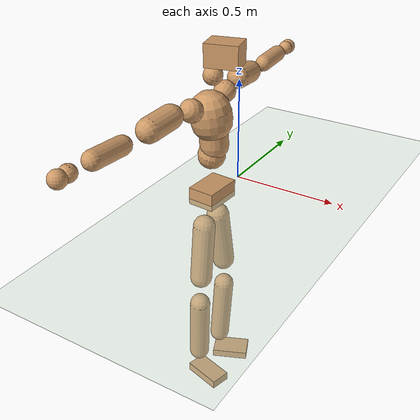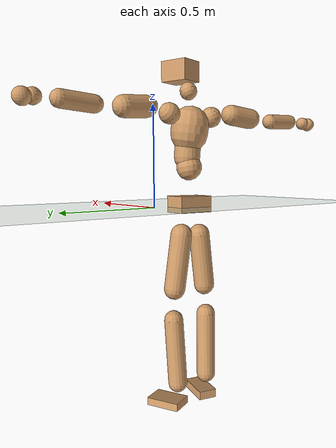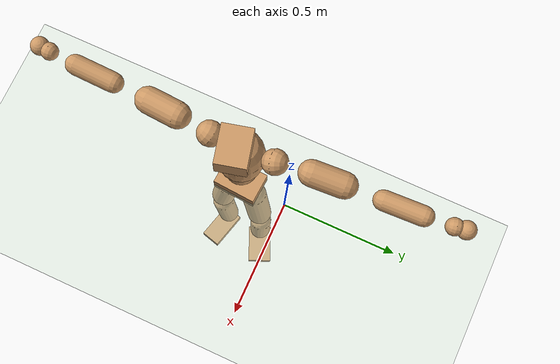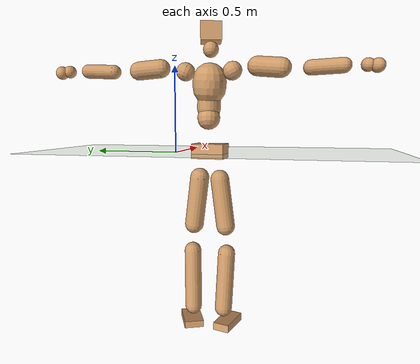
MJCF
<mujoco model="humanoid">
  <compiler coordinate="local" angle="radian"/>
  <default>
    <joint damping="0.0" armature="0.01" stiffness="0.0" limited="true"/>
    <geom conaffinity="1" condim="3" contype="7" margin="0.001" rgba="0.8 0.6 .4 1"/>
  </default>
  <asset>
    <texture type="skybox" builtin="gradient" rgb1=".4 .5 .6" rgb2="0 0 0" width="100" height="100"/>
    <texture builtin="flat" height="1278" mark="cross" markrgb="1 1 1" name="texgeom" random="0.01" rgb1="0.8 0.6 0.4" rgb2="0.8 0.6 0.4" type="cube" width="127"/>
    <texture builtin="checker" height="100" name="texplane" rgb1="0 0 0" rgb2="0.8 0.8 0.8" type="2d" width="100"/>
    <material name="MatPlane" reflectance="0.5" shininess="1" specular="1" texrepeat="60 60" texture="texplane"/>
    <material name="geom" texture="texgeom" texuniform="true"/>
  </asset>
  <worldbody>
    <light cutoff="100" diffuse="1 1 1" dir="-0 0 -1.3" directional="true" exponent="1" pos="0 0 1.3" specular=".1 .1 .1"/>
    <geom conaffinity="1" condim="3" name="floor" pos="0 0 0" rgba="0.8 0.9 0.8 1" size="100 100 .2" type="plane" material="MatPlane"/>
    <body name="Pelvis" pos="-0.0035 -0.2119 0.0206">
      <freejoint name="Pelvis"/>
      <geom type="box" contype="1" conaffinity="1" density="5359.375386" pos="-0.0120 0.0008 -0.0082" size="0.0645 0.0937 0.0421" quat="0.9994 0.0000 0.0000 -0.0332" name="Pelvis"/>
      <body name="L_Hip" pos="-0.022 0.0491 -0.0785">
        <joint name="L_Hip_x" type="hinge" pos="0 0 0" axis="1 0 0" stiffness="1600" damping="160" armature="0.02" range="-180.0000 180.0000"/>
        <joint name="L_Hip_y" type="hinge" pos="0 0 0" axis="0 1 0" stiffness="1600" damping="160" armature="0.02" range="-180.0000 180.0000"/>
        <joint name="L_Hip_z" type="hinge" pos="0 0 0" axis="0 0 1" stiffness="1600" damping="160" armature="0.02" range="-180.0000 180.0000"/>
        <geom type="capsule" contype="1" conaffinity="1" density="2040.816327" size="0.0551" fromto="0.0032 0.0110 -0.0843 0.0138 0.0480 -0.3681" name="L_Hip"/>
        <body name="L_Knee" pos="0.017 0.0589 -0.4524">
          <joint name="L_Knee_x" type="hinge" pos="0 0 0" axis="1 0 0" stiffness="1600" damping="160" armature="0.02" range="-180.0000 180.0000"/>
          <joint name="L_Knee_y" type="hinge" pos="0 0 0" axis="0 1 0" stiffness="1600" damping="160" armature="0.02" range="-180.0000 180.0000"/>
          <joint name="L_Knee_z" type="hinge" pos="0 0 0" axis="0 0 1" stiffness="1600" damping="160" armature="0.02" range="-180.0000 180.0000"/>
          <geom type="capsule" contype="1" conaffinity="1" density="1234.567901" size="0.0497" fromto="-0.0050 -0.0020 -0.0795 -0.0263 -0.0106 -0.4187" name="L_Knee"/>
          <body name="L_Ankle" pos="-0.0313 -0.0126 -0.4982">
            <joint name="L_Ankle_x" type="hinge" pos="0 0 0" axis="1 0 0" stiffness="1600" damping="160" armature="0.02" range="-180.0000 180.0000"/>
            <joint name="L_Ankle_y" type="hinge" pos="0 0 0" axis="0 1 0" stiffness="1600" damping="160" armature="0.02" range="-180.0000 180.0000"/>
            <joint name="L_Ankle_z" type="hinge" pos="0 0 0" axis="0 0 1" stiffness="1600" damping="160" armature="0.02" range="-180.0000 180.0000"/>
            <geom type="box" contype="1" conaffinity="1" density="999.99995" pos="0.0641 0.0276 -0.0341" size="0.091 0.0576 0.02" quat="0.9794 0.0000 0.0000 0.2020" name="L_Ankle"/>
            <body name="L_Toe" pos="0.1282 0.0552 -0.0682">
              <joint name="L_Toe_x" type="hinge" pos="0 0 0" axis="1 0 0" stiffness="1000" damping="100" armature="0.02" range="-180.0000 180.0000"/>
              <joint name="L_Toe_y" type="hinge" pos="0 0 0" axis="0 1 0" stiffness="1000" damping="100" armature="0.02" range="-180.0000 180.0000"/>
              <joint name="L_Toe_z" type="hinge" pos="0 0 0" axis="0 0 1" stiffness="1000" damping="100" armature="0.02" range="-180.0000 180.0000"/>
              <geom type="box" contype="1" conaffinity="1" density="7505850.998462" pos="0.0000 0.0000 0.0369" size="0.001 0.0027 0.0011" quat="0.9786 0.0000 0.0000 0.2056" name="L_Toe"/>
            </body>
          </body>
        </body>
      </body>
      <body name="R_Hip" pos="-0.0204 -0.0491 -0.0866">
        <joint name="R_Hip_x" type="hinge" pos="0 0 0" axis="1 0 0" stiffness="1600" damping="160" armature="0.02" range="-180.0000 180.0000"/>
        <joint name="R_Hip_y" type="hinge" pos="0 0 0" axis="0 1 0" stiffness="1600" damping="160" armature="0.02" range="-180.0000 180.0000"/>
        <joint name="R_Hip_z" type="hinge" pos="0 0 0" axis="0 0 1" stiffness="1600" damping="160" armature="0.02" range="-180.0000 180.0000"/>
        <geom type="capsule" contype="1" conaffinity="1" density="2040.816327" size="0.0538" fromto="0.0003 -0.0107 -0.0832 0.0013 -0.0464 -0.3609" name="R_Hip"/>
        <body name="R_Knee" pos="0.0016 -0.0571 -0.444">
          <joint name="R_Knee_x" type="hinge" pos="0 0 0" axis="1 0 0" stiffness="1600" damping="160" armature="0.02" range="-180.0000 180.0000"/>
          <joint name="R_Knee_y" type="hinge" pos="0 0 0" axis="0 1 0" stiffness="1600" damping="160" armature="0.02" range="-180.0000 180.0000"/>
          <joint name="R_Knee_z" type="hinge" pos="0 0 0" axis="0 0 1" stiffness="1600" damping="160" armature="0.02" range="-180.0000 180.0000"/>
          <geom type="capsule" contype="1" conaffinity="1" density="1234.567901" size="0.0502" fromto="-0.0046 0.0032 -0.0800 -0.0237 0.0166 -0.4104" name="R_Knee"/>
          <body name="R_Ankle" pos="-0.0284 0.0199 -0.4903">
            <joint name="R_Ankle_x" type="hinge" pos="0 0 0" axis="1 0 0" stiffness="1600" damping="160" armature="0.02" range="-180.0000 180.0000"/>
            <joint name="R_Ankle_y" type="hinge" pos="0 0 0" axis="0 1 0" stiffness="1600" damping="160" armature="0.02" range="-180.0000 180.0000"/>
            <joint name="R_Ankle_z" type="hinge" pos="0 0 0" axis="0 0 1" stiffness="1600" damping="160" armature="0.02" range="-180.0000 180.0000"/>
            <geom type="box" contype="1" conaffinity="1" density="1000.000054" pos="0.0687 -0.0183 -0.0361" size="0.0964 0.0489 0.0222" quat="0.9915 0.0000 0.0000 -0.1301" name="R_Ankle"/>
            <body name="R_Toe" pos="0.1374 -0.0367 -0.0721">
              <joint name="R_Toe_x" type="hinge" pos="0 0 0" axis="1 0 0" stiffness="1000" damping="100" armature="0.02" range="-180.0000 180.0000"/>
              <joint name="R_Toe_y" type="hinge" pos="0 0 0" axis="0 1 0" stiffness="1000" damping="100" armature="0.02" range="-180.0000 180.0000"/>
              <joint name="R_Toe_z" type="hinge" pos="0 0 0" axis="0 0 1" stiffness="1000" damping="100" armature="0.02" range="-180.0000 180.0000"/>
              <geom type="box" contype="1" conaffinity="1" density="9306815.166121" pos="0.0000 0.0000 0.0366" size="0.001 0.0024 0.0011" quat="0.9926 0.0000 0.0000 -0.1217" name="R_Toe"/>
            </body>
          </body>
        </body>
      </body>
      <body name="Torso" pos="-0.0296 0.0048 0.1158">
        <joint name="Torso_x" type="hinge" pos="0 0 0" axis="1 0 0" stiffness="2000" damping="200" armature="0.02" range="-180.0000 180.0000"/>
        <joint name="Torso_y" type="hinge" pos="0 0 0" axis="0 1 0" stiffness="2000" damping="200" armature="0.02" range="-180.0000 180.0000"/>
        <joint name="Torso_z" type="hinge" pos="0 0 0" axis="0 0 1" stiffness="2000" damping="200" armature="0.02" range="-180.0000 180.0000"/>
        <geom type="capsule" contype="1" conaffinity="1" density="2040.816327" size="0.0653" fromto="0.0122 0.0017 0.0639 0.0126 0.0018 0.0658" name="Torso"/>
        <body name="Spine" pos="0.0248 0.0035 0.1297">
          <joint name="Spine_x" type="hinge" pos="0 0 0" axis="1 0 0" stiffness="2000" damping="200" armature="0.02" range="-180.0000 180.0000"/>
          <joint name="Spine_y" type="hinge" pos="0 0 0" axis="0 1 0" stiffness="2000" damping="200" armature="0.02" range="-180.0000 180.0000"/>
          <joint name="Spine_z" type="hinge" pos="0 0 0" axis="0 0 1" stiffness="2000" damping="200" armature="0.02" range="-180.0000 180.0000"/>
          <geom type="capsule" contype="1" conaffinity="1" density="2040.816327" size="0.0667" fromto="-0.0039 -0.0020 0.0666 0.0008 0.0004 -0.0141" name="Spine"/>
          <body name="Chest" pos="-0.0031 -0.0016 0.0525">
            <joint name="Chest_x" type="hinge" pos="0 0 0" axis="1 0 0" stiffness="2000" damping="200" armature="0.02" range="-180.0000 180.0000"/>
            <joint name="Chest_y" type="hinge" pos="0 0 0" axis="0 1 0" stiffness="2000" damping="200" armature="0.02" range="-180.0000 180.0000"/>
            <joint name="Chest_z" type="hinge" pos="0 0 0" axis="0 0 1" stiffness="2000" damping="200" armature="0.02" range="-180.0000 180.0000"/>
            <geom type="capsule" contype="1" conaffinity="1" density="2040.816327" size="0.0955" fromto="-0.0120 -0.0054 0.0945 -0.0067 -0.0030 0.0531" name="Chest"/>
            <body name="Neck" pos="-0.0201 -0.0144 0.2147">
              <joint name="Neck_x" type="hinge" pos="0 0 0" axis="1 0 0" stiffness="1000" damping="100" armature="0.02" range="-180.0000 180.0000"/>
              <joint name="Neck_y" type="hinge" pos="0 0 0" axis="0 1 0" stiffness="1000" damping="100" armature="0.02" range="-180.0000 180.0000"/>
              <joint name="Neck_z" type="hinge" pos="0 0 0" axis="0 0 1" stiffness="1000" damping="100" armature="0.02" range="-180.0000 180.0000"/>
              <geom type="capsule" contype="1" conaffinity="1" density="1000" size="0.0438" fromto="0.0248 0.0054 0.0485 0.0257 0.0055 0.0503" name="Neck"/>
              <body name="Head" pos="0.0504 0.0109 0.0989">
                <joint name="Head_x" type="hinge" pos="0 0 0" axis="1 0 0" stiffness="1000" damping="100" armature="0.02" range="-180.0000 180.0000"/>
                <joint name="Head_y" type="hinge" pos="0 0 0" axis="0 1 0" stiffness="1000" damping="100" armature="0.02" range="-180.0000 180.0000"/>
                <joint name="Head_z" type="hinge" pos="0 0 0" axis="0 0 1" stiffness="1000" damping="100" armature="0.02" range="-180.0000 180.0000"/>
                <geom type="box" contype="1" conaffinity="1" density="2250.000191" pos="0.0262 0.0064 0.0504" size="0.0754 0.0597 0.0514" quat="0.9927 0.0000 0.0000 0.1203" name="Head"/>
              </body>
            </body>
            <body name="L_Thorax" pos="-0.0157 0.0717 0.1151">
              <joint name="L_Thorax_x" type="hinge" pos="0 0 0" axis="1 0 0" stiffness="1000" damping="100" armature="0.02" range="-180.0000 180.0000"/>
              <joint name="L_Thorax_y" type="hinge" pos="0 0 0" axis="0 1 0" stiffness="1000" damping="100" armature="0.02" range="-180.0000 180.0000"/>
              <joint name="L_Thorax_z" type="hinge" pos="0 0 0" axis="0 0 1" stiffness="1000" damping="100" armature="0.02" range="-180.0000 180.0000"/>
              <geom type="capsule" contype="1" conaffinity="1" density="1000" size="0.0522" fromto="-0.0059 0.0592 0.0265 -0.0061 0.0610 0.0273" name="L_Thorax"/>
              <body name="L_Shoulder" pos="-0.012 0.1202 0.0537">
                <joint name="L_Shoulder_x" type="hinge" pos="0 0 0" axis="1 0 0" stiffness="1000" damping="100" armature="0.02" range="-720.0000 720.0000"/>
                <joint name="L_Shoulder_y" type="hinge" pos="0 0 0" axis="0 1 0" stiffness="1000" damping="100" armature="0.02" range="-720.0000 720.0000"/>
                <joint name="L_Shoulder_z" type="hinge" pos="0 0 0" axis="0 0 1" stiffness="1000" damping="100" armature="0.02" range="-720.0000 720.0000"/>
                <geom type="capsule" contype="1" conaffinity="1" density="1000" size="0.0522" fromto="-0.0066 0.0817 -0.0068 -0.0172 0.2125 -0.0177" name="L_Shoulder"/>
                <body name="L_Elbow" pos="-0.0238 0.2942 -0.0245">
                  <joint name="L_Elbow_x" type="hinge" pos="0 0 0" axis="1 0 0" stiffness="1000" damping="100" armature="0.02" range="-720.0000 720.0000"/>
                  <joint name="L_Elbow_y" type="hinge" pos="0 0 0" axis="0 1 0" stiffness="1000" damping="100" armature="0.02" range="-720.0000 720.0000"/>
                  <joint name="L_Elbow_z" type="hinge" pos="0 0 0" axis="0 0 1" stiffness="1000" damping="100" armature="0.02" range="-720.0000 720.0000"/>
                  <geom type="capsule" contype="1" conaffinity="1" density="1000" size="0.0401" fromto="-0.0020 0.0700 0.0034 -0.0067 0.2293 0.0112" name="L_Elbow"/>
                  <body name="L_Wrist" pos="-0.0087 0.2993 0.0146">
                    <joint name="L_Wrist_x" type="hinge" pos="0 0 0" axis="1 0 0" stiffness="600" damping="60" armature="0.02" range="-180.0000 180.0000"/>
                    <joint name="L_Wrist_y" type="hinge" pos="0 0 0" axis="0 1 0" stiffness="600" damping="60" armature="0.02" range="-180.0000 180.0000"/>
                    <joint name="L_Wrist_z" type="hinge" pos="0 0 0" axis="0 0 1" stiffness="600" damping="60" armature="0.02" range="-180.0000 180.0000"/>
                    <geom type="capsule" contype="1" conaffinity="1" density="1000" size="0.0351" fromto="-0.0084 0.0453 -0.0054 -0.0088 0.0472 -0.0056" name="L_Wrist"/>
                    <body name="L_Hand" pos="-0.0172 0.0925 -0.011">
                      <joint name="L_Hand_x" type="hinge" pos="0 0 0" axis="1 0 0" stiffness="600" damping="60" armature="0.02" range="-180.0000 180.0000"/>
                      <joint name="L_Hand_y" type="hinge" pos="0 0 0" axis="0 1 0" stiffness="600" damping="60" armature="0.02" range="-180.0000 180.0000"/>
                      <joint name="L_Hand_z" type="hinge" pos="0 0 0" axis="0 0 1" stiffness="600" damping="60" armature="0.02" range="-180.0000 180.0000"/>
                      <geom type="sphere" contype="1" conaffinity="1" density="1000" size="0.0375" pos="0.0000 0.0000 0.0000" name="L_Hand"/>
                    </body>
                  </body>
                </body>
              </body>
            </body>
            <body name="R_Thorax" pos="-0.0203 -0.0825 0.1131">
              <joint name="R_Thorax_x" type="hinge" pos="0 0 0" axis="1 0 0" stiffness="1000" damping="100" armature="0.02" range="-180.0000 180.0000"/>
              <joint name="R_Thorax_y" type="hinge" pos="0 0 0" axis="0 1 0" stiffness="1000" damping="100" armature="0.02" range="-180.0000 180.0000"/>
              <joint name="R_Thorax_z" type="hinge" pos="0 0 0" axis="0 0 1" stiffness="1000" damping="100" armature="0.02" range="-180.0000 180.0000"/>
              <geom type="capsule" contype="1" conaffinity="1" density="1000" size="0.0525" fromto="-0.0015 -0.0543 0.0277 -0.0015 -0.0561 0.0286" name="R_Thorax"/>
              <body name="R_Shoulder" pos="-0.003 -0.1104 0.0564">
                <joint name="R_Shoulder_x" type="hinge" pos="0 0 0" axis="1 0 0" stiffness="1000" damping="100" armature="0.02" range="-720.0000 720.0000"/>
                <joint name="R_Shoulder_y" type="hinge" pos="0 0 0" axis="0 1 0" stiffness="1000" damping="100" armature="0.02" range="-720.0000 720.0000"/>
                <joint name="R_Shoulder_z" type="hinge" pos="0 0 0" axis="0 0 1" stiffness="1000" damping="100" armature="0.02" range="-720.0000 720.0000"/>
                <geom type="capsule" contype="1" conaffinity="1" density="1000" size="0.0538" fromto="-0.0076 -0.0831 -0.0081 -0.0194 -0.2132 -0.0208" name="R_Shoulder"/>
                <body name="R_Elbow" pos="-0.027 -0.2963 -0.029">
                  <joint name="R_Elbow_x" type="hinge" pos="0 0 0" axis="1 0 0" stiffness="1000" damping="100" armature="0.02" range="-720.0000 720.0000"/>
                  <joint name="R_Elbow_y" type="hinge" pos="0 0 0" axis="0 1 0" stiffness="1000" damping="100" armature="0.02" range="-720.0000 720.0000"/>
                  <joint name="R_Elbow_z" type="hinge" pos="0 0 0" axis="0 0 1" stiffness="1000" damping="100" armature="0.02" range="-720.0000 720.0000"/>
                  <geom type="capsule" contype="1" conaffinity="1" density="1000" size="0.0405" fromto="-0.0013 -0.0705 0.0027 -0.0044 -0.2344 0.0091" name="R_Elbow"/>
                  <body name="R_Wrist" pos="-0.0057 -0.3048 0.0118">
                    <joint name="R_Wrist_x" type="hinge" pos="0 0 0" axis="1 0 0" stiffness="600" damping="60" armature="0.02" range="-180.0000 180.0000"/>
                    <joint name="R_Wrist_y" type="hinge" pos="0 0 0" axis="0 1 0" stiffness="600" damping="60" armature="0.02" range="-180.0000 180.0000"/>
                    <joint name="R_Wrist_z" type="hinge" pos="0 0 0" axis="0 0 1" stiffness="600" damping="60" armature="0.02" range="-180.0000 180.0000"/>
                    <geom type="capsule" contype="1" conaffinity="1" density="1000" size="0.0351" fromto="-0.0056 -0.0454 -0.0043 -0.0058 -0.0474 -0.0045" name="R_Wrist"/>
                    <body name="R_Hand" pos="-0.0114 -0.0928 -0.0087">
                      <joint name="R_Hand_x" type="hinge" pos="0 0 0" axis="1 0 0" stiffness="600" damping="60" armature="0.02" range="-180.0000 180.0000"/>
                      <joint name="R_Hand_y" type="hinge" pos="0 0 0" axis="0 1 0" stiffness="600" damping="60" armature="0.02" range="-180.0000 180.0000"/>
                      <joint name="R_Hand_z" type="hinge" pos="0 0 0" axis="0 0 1" stiffness="600" damping="60" armature="0.02" range="-180.0000 180.0000"/>
                      <geom type="sphere" contype="1" conaffinity="1" density="1000" size="0.0373" pos="0.0000 0.0000 0.0000" name="R_Hand"/>
                    </body>
                  </body>
                </body>
              </body>
            </body>
          </body>
        </body>
      </body>
    </body>
  </worldbody>
  <actuator>
    <motor name="L_Hip_x" joint="L_Hip_x" gear="500"/>
    <motor name="L_Hip_y" joint="L_Hip_y" gear="500"/>
    <motor name="L_Hip_z" joint="L_Hip_z" gear="500"/>
    <motor name="L_Knee_x" joint="L_Knee_x" gear="500"/>
    <motor name="L_Knee_y" joint="L_Knee_y" gear="500"/>
    <motor name="L_Knee_z" joint="L_Knee_z" gear="500"/>
    <motor name="L_Ankle_x" joint="L_Ankle_x" gear="500"/>
    <motor name="L_Ankle_y" joint="L_Ankle_y" gear="500"/>
    <motor name="L_Ankle_z" joint="L_Ankle_z" gear="500"/>
    <motor name="L_Toe_x" joint="L_Toe_x" gear="500"/>
    <motor name="L_Toe_y" joint="L_Toe_y" gear="500"/>
    <motor name="L_Toe_z" joint="L_Toe_z" gear="500"/>
    <motor name="R_Hip_x" joint="R_Hip_x" gear="500"/>
    <motor name="R_Hip_y" joint="R_Hip_y" gear="500"/>
    <motor name="R_Hip_z" joint="R_Hip_z" gear="500"/>
    <motor name="R_Knee_x" joint="R_Knee_x" gear="500"/>
    <motor name="R_Knee_y" joint="R_Knee_y" gear="500"/>
    <motor name="R_Knee_z" joint="R_Knee_z" gear="500"/>
    <motor name="R_Ankle_x" joint="R_Ankle_x" gear="500"/>
    <motor name="R_Ankle_y" joint="R_Ankle_y" gear="500"/>
    <motor name="R_Ankle_z" joint="R_Ankle_z" gear="500"/>
    <motor name="R_Toe_x" joint="R_Toe_x" gear="500"/>
    <motor name="R_Toe_y" joint="R_Toe_y" gear="500"/>
    <motor name="R_Toe_z" joint="R_Toe_z" gear="500"/>
    <motor name="Torso_x" joint="Torso_x" gear="500"/>
    <motor name="Torso_y" joint="Torso_y" gear="500"/>
    <motor name="Torso_z" joint="Torso_z" gear="500"/>
    <motor name="Spine_x" joint="Spine_x" gear="500"/>
    <motor name="Spine_y" joint="Spine_y" gear="500"/>
    <motor name="Spine_z" joint="Spine_z" gear="500"/>
    <motor name="Chest_x" joint="Chest_x" gear="500"/>
    <motor name="Chest_y" joint="Chest_y" gear="500"/>
    <motor name="Chest_z" joint="Chest_z" gear="500"/>
    <motor name="Neck_x" joint="Neck_x" gear="500"/>
    <motor name="Neck_y" joint="Neck_y" gear="500"/>
    <motor name="Neck_z" joint="Neck_z" gear="500"/>
    <motor name="Head_x" joint="Head_x" gear="500"/>
    <motor name="Head_y" joint="Head_y" gear="500"/>
    <motor name="Head_z" joint="Head_z" gear="500"/>
    <motor name="L_Thorax_x" joint="L_Thorax_x" gear="500"/>
    <motor name="L_Thorax_y" joint="L_Thorax_y" gear="500"/>
    <motor name="L_Thorax_z" joint="L_Thorax_z" gear="500"/>
    <motor name="L_Shoulder_x" joint="L_Shoulder_x" gear="500"/>
    <motor name="L_Shoulder_y" joint="L_Shoulder_y" gear="500"/>
    <motor name="L_Shoulder_z" joint="L_Shoulder_z" gear="500"/>
    <motor name="L_Elbow_x" joint="L_Elbow_x" gear="500"/>
    <motor name="L_Elbow_y" joint="L_Elbow_y" gear="500"/>
    <motor name="L_Elbow_z" joint="L_Elbow_z" gear="500"/>
    <motor name="L_Wrist_x" joint="L_Wrist_x" gear="500"/>
    <motor name="L_Wrist_y" joint="L_Wrist_y" gear="500"/>
    <motor name="L_Wrist_z" joint="L_Wrist_z" gear="500"/>
    <motor name="L_Hand_x" joint="L_Hand_x" gear="500"/>
    <motor name="L_Hand_y" joint="L_Hand_y" gear="500"/>
    <motor name="L_Hand_z" joint="L_Hand_z" gear="500"/>
    <motor name="R_Thorax_x" joint="R_Thorax_x" gear="500"/>
    <motor name="R_Thorax_y" joint="R_Thorax_y" gear="500"/>
    <motor name="R_Thorax_z" joint="R_Thorax_z" gear="500"/>
    <motor name="R_Shoulder_x" joint="R_Shoulder_x" gear="500"/>
    <motor name="R_Shoulder_y" joint="R_Shoulder_y" gear="500"/>
    <motor name="R_Shoulder_z" joint="R_Shoulder_z" gear="500"/>
    <motor name="R_Elbow_x" joint="R_Elbow_x" gear="500"/>
    <motor name="R_Elbow_y" joint="R_Elbow_y" gear="500"/>
    <motor name="R_Elbow_z" joint="R_Elbow_z" gear="500"/>
    <motor name="R_Wrist_x" joint="R_Wrist_x" gear="500"/>
    <motor name="R_Wrist_y" joint="R_Wrist_y" gear="500"/>
    <motor name="R_Wrist_z" joint="R_Wrist_z" gear="500"/>
    <motor name="R_Hand_x" joint="R_Hand_x" gear="500"/>
    <motor name="R_Hand_y" joint="R_Hand_y" gear="500"/>
    <motor name="R_Hand_z" joint="R_Hand_z" gear="500"/>
  </actuator>
  <contact>
    <exclude body1="Torso" body2="Chest"/>
    <exclude body1="Head" body2="Chest"/>
    <exclude body1="R_Knee" body2="R_Toe"/>
    <exclude body1="R_Knee" body2="L_Ankle"/>
    <exclude body1="R_Knee" body2="L_Toe"/>
    <exclude body1="L_Knee" body2="L_Toe"/>
    <exclude body1="L_Knee" body2="R_Ankle"/>
    <exclude body1="L_Knee" body2="R_Toe"/>
    <exclude body1="L_Shoulder" body2="Chest"/>
    <exclude body1="R_Shoulder" body2="Chest"/>
  </contact>
  <sensor/>
  <size njmax="700" nconmax="700"/>
</mujoco>
